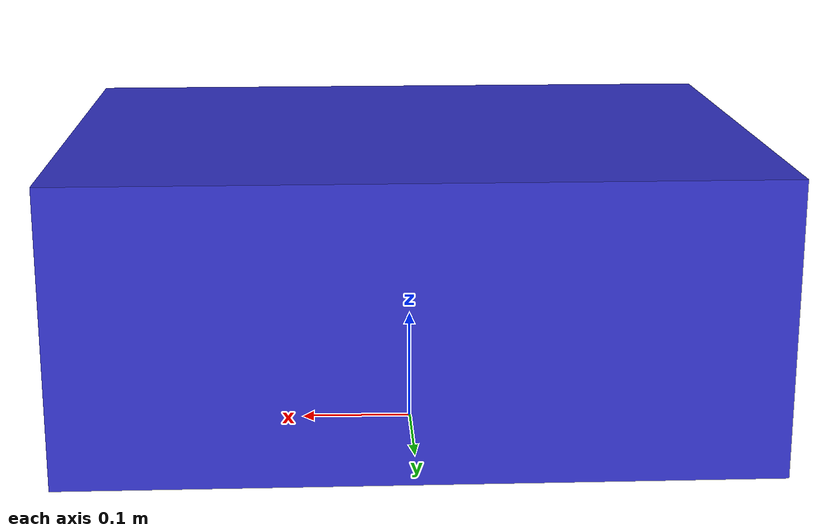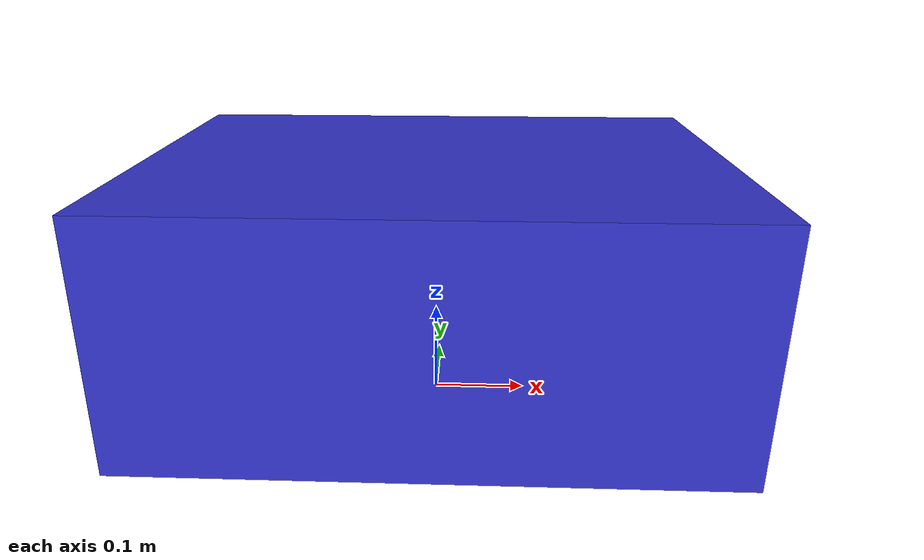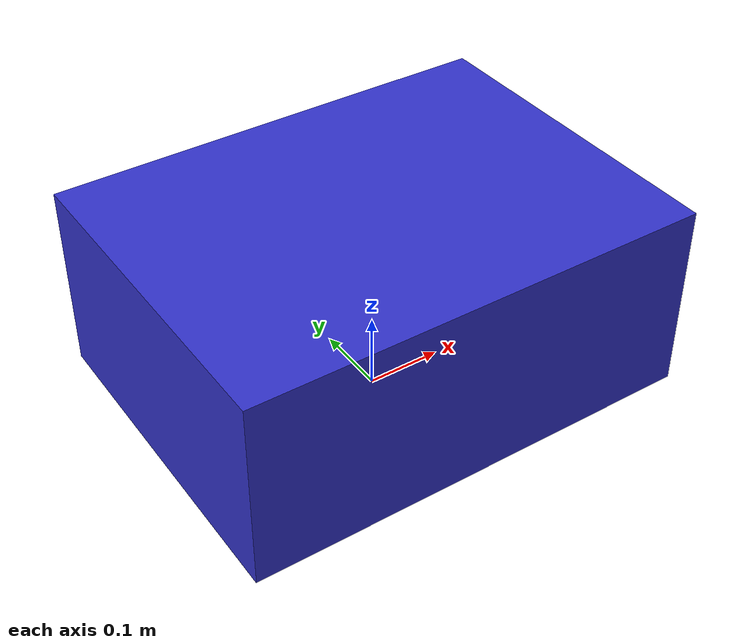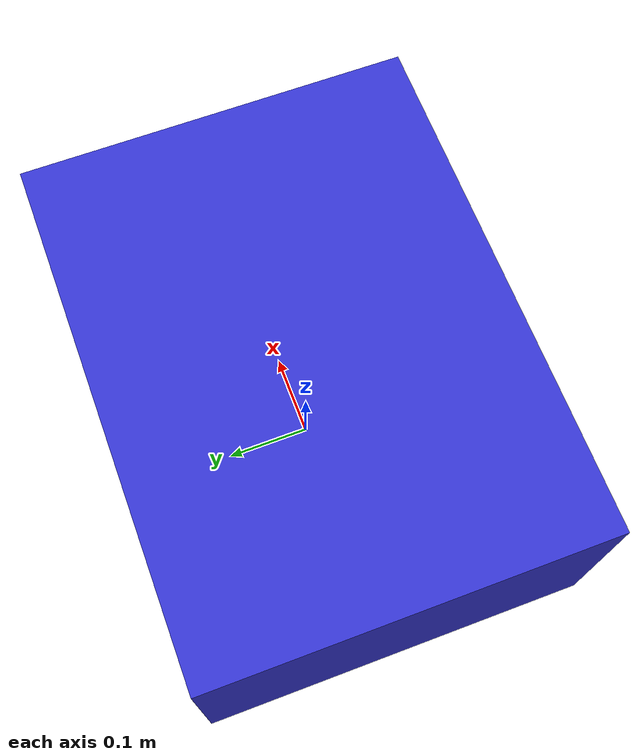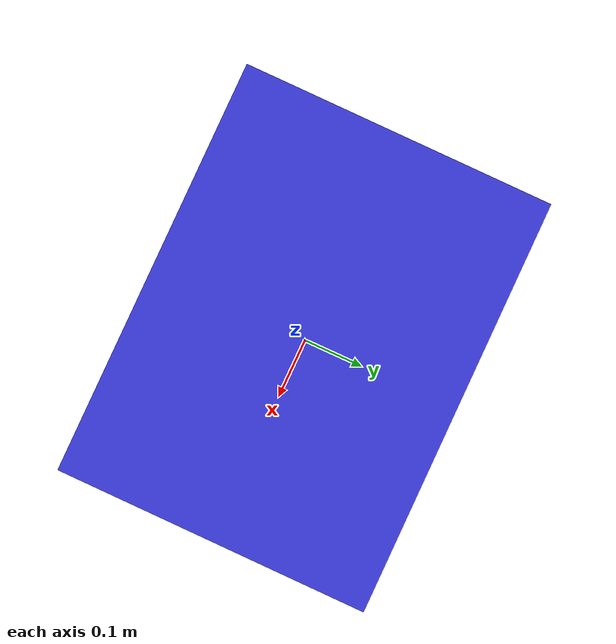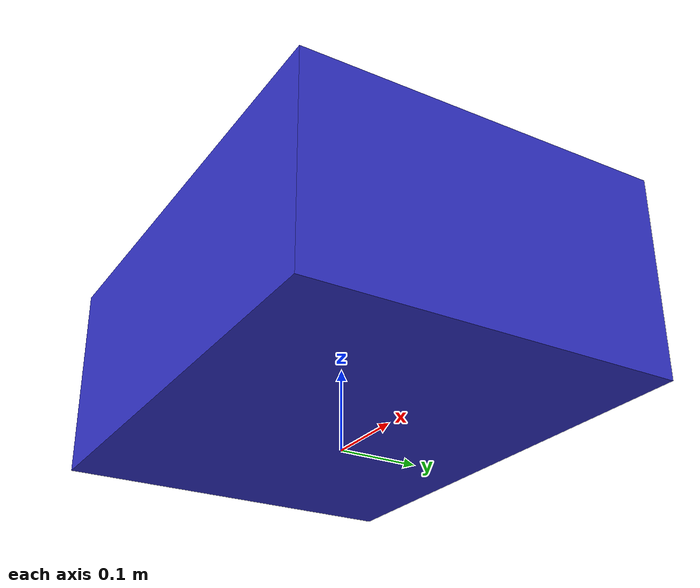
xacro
<?xml version="1.0"?>
<robot xmlns:xacro="http://www.ros.org/wiki/xacro">

  <xacro:property name="base_length" value="0.6"/>
  <xacro:property name="base_width" value="0.45"/>
  <xacro:property name="base_height" value="0.25"/>
  <xacro:property name="base_z_offset" value="0.15"/> <!-- From ground to center of base -->

  <material name="blue">
    <color rgba="0.2 0.2 0.8 1"/>
  </material>

  <link name="base_footprint"/>

  <joint name="base_joint" type="fixed">
    <parent link="base_footprint"/>
    <child link="base_link"/>
    <origin xyz="0 0 ${base_z_offset}" rpy="0 0 0"/>
  </joint>

  <link name="base_link">
    <visual>
      <origin xyz="0 0 0" rpy="0 0 0"/>
      <geometry>
        <box size="${base_length} ${base_width} ${base_height}"/>
      </geometry>
      <material name="blue"/>
    </visual>
    <collision>
      <origin xyz="0 0 0" rpy="0 0 0"/>
      <geometry>
        <box size="${base_length} ${base_width} ${base_height}"/>
      </geometry>
    </collision>
    <inertial>
      <origin xyz="0 0 0" rpy="0 0 0"/>
      <mass value="20.0"/>
      <inertia ixx="1.0" ixy="0.0" ixz="0.0" iyy="1.0" iyz="0.0" izz="1.0"/>
    </inertial>
  </link>

  <gazebo reference="base_link">
    <material>Gazebo/Blue</material>
  </gazebo>

</robot>
